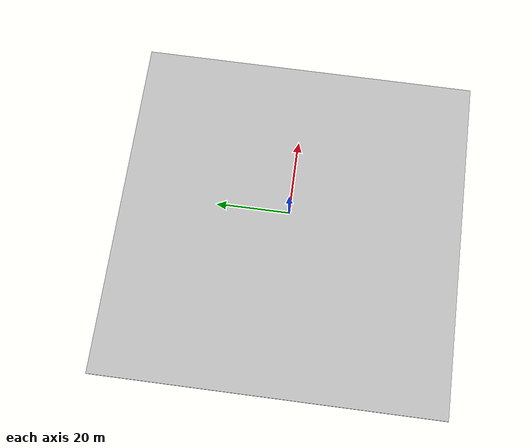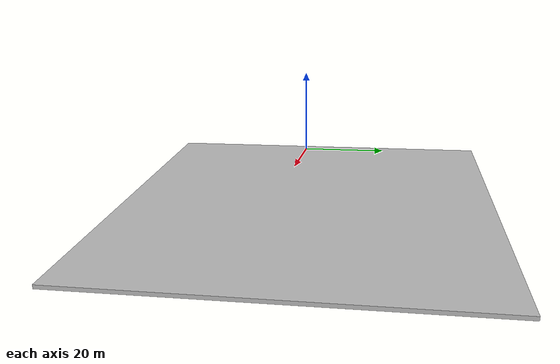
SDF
<?xml version="1.0" ?>
<sdf version="1.6">
  <world name="default">
    <!-- Physics Engine -->
    <physics type="ode">
      <max_step_size>0.004</max_step_size>
      <real_time_factor>1</real_time_factor>
      <real_time_update_rate>250</real_time_update_rate>
    </physics>

    <!-- Scene -->
    <scene>
      <ambient>0.4 0.4 0.4 1</ambient>
      <background>0.05 0.05 0.2 1</background>
      <shadows>true</shadows>
      <fog>
        <color>0.05 0.05 0.2 1</color>
        <type>linear</type>
        <start>1.0</start>
        <end>50.0</end>
        <density>0.05</density>
      </fog>
    </scene>

    <!-- Sun (as a light source) -->
<light type="directional" name="sun">
  <cast_shadows>true</cast_shadows>
  <pose>0 0 10 0 0 0</pose>
  <diffuse>0.8 0.8 0.8 1</diffuse>
  <specular>0.2 0.2 0.2 1</specular>
  <direction>-0.5 0.1 -0.9</direction>
</light>

<model name="ground_plane">
  <static>true</static>
  <link name="link">
    <collision name="collision">
      <geometry><plane><normal>0 0 1</normal><size>100 100</size></plane></geometry>
    </collision>
    <visual name="visual">
      <geometry><plane><normal>0 0 1</normal><size>100 100</size></plane></geometry>
      <material><ambient>0.8 0.8 0.8 1</ambient><diffuse>0.8 0.8 0.8 1</diffuse></material>
    </visual>
  </link>
</model>

    <!-- Sloped Box as simple terrain -->
    <model name="slope">
      <static>true</static>
      <pose>0 0 -15 0 0.1 0</pose>
      <link name="link">
        <collision name="collision">
          <geometry>
            <box>
              <size>100 100 1</size>
            </box>
          </geometry>
        </collision>
        <visual name="visual">
          <geometry>
            <box>
              <size>100 100 1</size>
            </box>
          </geometry>
          <material>
            <script>
              <uri>file://media/materials/scripts/gazebo.material</uri>
              <name>Gazebo/Sand</name>
            </script>
          </material>
        </visual>
      </link>
    </model>

  </world>
</sdf>
